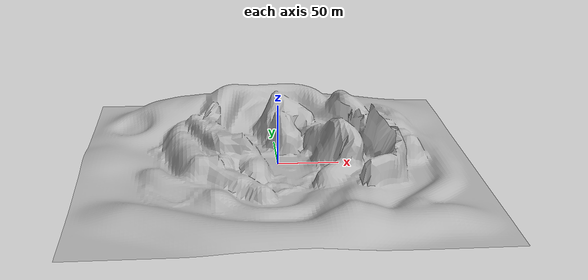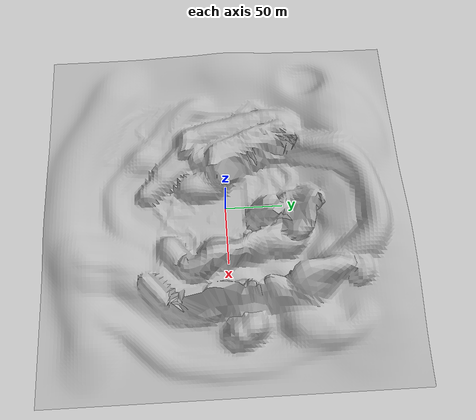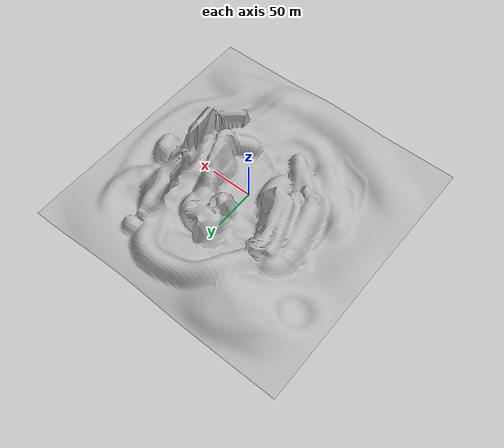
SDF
<?xml version="1.0" encoding="UTF-8" ?>

<sdf version="1.7">
  <world name="assignment4">
    <physics type="ode">
      <max_step_size>0.003</max_step_size>
      <real_time_factor>1.0</real_time_factor>
    </physics>
    <plugin name='ignition::gazebo::systems::Physics' filename='libignition-gazebo-physics-system.so'/>
    <plugin name='ignition::gazebo::systems::UserCommands' filename='libignition-gazebo-user-commands-system.so'/>
    <plugin name='ignition::gazebo::systems::SceneBroadcaster' filename='libignition-gazebo-scene-broadcaster-system.so'/>
    <plugin name="ignition::gazebo::systems::Sensors" filename="libignition-gazebo-sensors-system.so">
      <render_engine>ogre</render_engine>
    </plugin>
    <plugin name="ignition::gazebo::systems::Imu" filename="libignition-gazebo-imu-system.so"/>
    <plugin name="ignition::gazebo::systems::NavSat" filename="libignition-gazebo-navsat-system.so"/>

    <scene>
      <ambient>0.5 0.5 0.5 1</ambient>
      <background>0.5 0.5 0.5 1</background>
      <shadows>false</shadows>
      <grid>false</grid>
    </scene>

    <spherical_coordinates>
      <surface_model>EARTH_WGS84</surface_model>
      <world_frame_orientation>ENU</world_frame_orientation>
      <latitude_deg>-42.986687</latitude_deg>
      <longitude_deg>-23.202501</longitude_deg>
      <elevation>18.123</elevation>
      <heading_deg>-20</heading_deg>
    </spherical_coordinates>

    <light type="directional" name="directional_light_1">
      <pose>0 20 20 0.1 0.1 0</pose>
      <diffuse>1 1 1 1</diffuse>
      <specular>1 1 1 1</specular>
      <attenuation>
        <range>300</range>
      </attenuation>
      <direction>0.1 0.1 -1</direction>
      <cast_shadows>true</cast_shadows>
    </light>

    <include>
      <uri>model://landscape</uri>
    </include>

  </world>

</sdf>

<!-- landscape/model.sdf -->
<sdf version="1.5">
    <model name="landscape">
      <link name="landscape_link">
        <pose>0 0 0 0 0 0</pose>
        <collision name="landscape_collision">
          <geometry>
            <mesh>
              <uri>model://landscape/meshes/landscape.dae</uri>
              <scale>1 1 1</scale>
            </mesh>
          </geometry>
	  <surface>
	    <friction>
	      <ode>
		<mu>1.0</mu>
		<mu2>1.0</mu2>
	      </ode>
	    </friction>
	  </surface>
        </collision>
        <visual name="landscape">
          <geometry>
            <mesh>
              <uri>model://landscape/meshes/landscape.dae</uri>
              <scale>1 1 1</scale>
            </mesh>
          </geometry>
          <cast_shadows>true</cast_shadows>
        </visual>
      </link>
      <static>true</static>
    </model>
</sdf>
